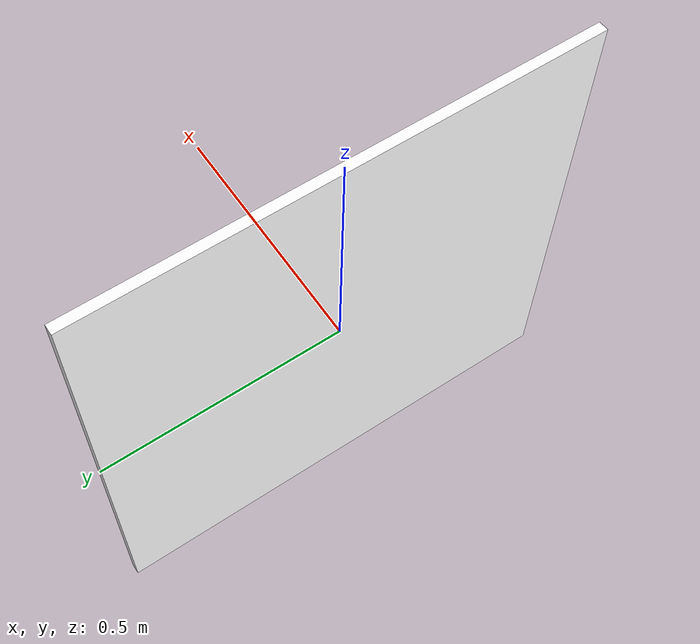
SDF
<?xml version="1.0" ?>
<sdf version="1.10">
  <model name="autorace_checker">
    <static>true</static>
    <link name="box">
      <pose>0 0 0 0 0 0</pose>
      <collision name="collision">
        <geometry>
          <box>
            <size>0.02 1 1</size>
          </box>
        </geometry>
      </collision>
      <visual name="visual">
        <geometry>
          <box>
            <size>0.02 1 1</size>
          </box>
        </geometry>
                <material>
          <diffuse>1 1 1 1</diffuse>
          <specular>0.1 0.1 0.1 1</specular>
          <pbr>
            <metal>
              <albedo_map>model://autorace_checker/materials/textures/checker.png</albedo_map>
              <metalness>0.0</metalness>
              <roughness>0.9</roughness>
            </metal>
          </pbr>
        </material>
      </visual>
    </link>
  </model>
</sdf>
